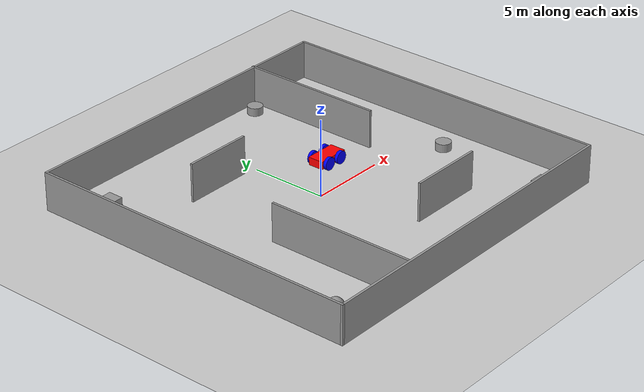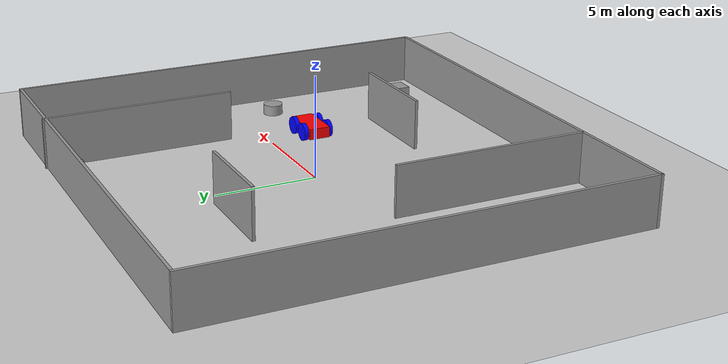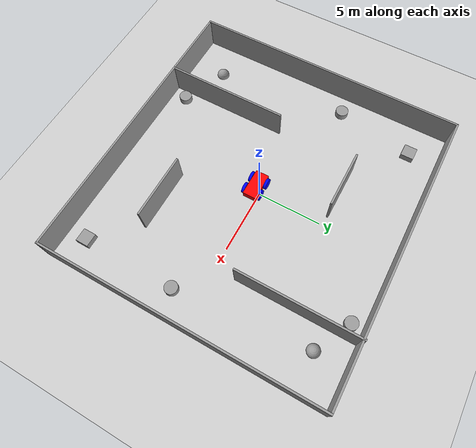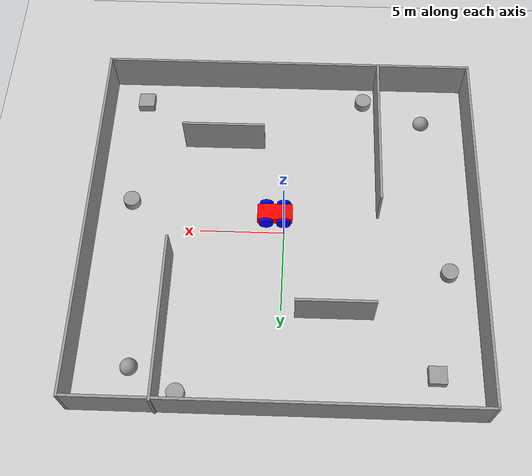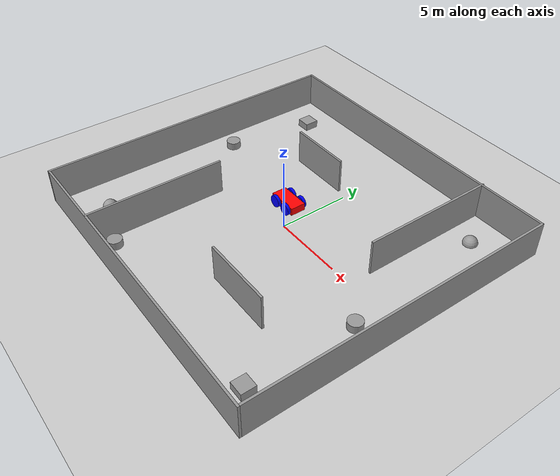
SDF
<sdf version="1.8">
 <world name="sensor_world">
  <physics name="1ms" type="ignored">
   <max_step_size>0.001</max_step_size>
   <real_time_factor>1.0</real_time_factor>
  </physics>
  <plugin filename="ignition-gazebo-physics-system" name="ignition::gazebo::systems::Physics"/>
  <plugin filename="ignition-gazebo-user-commands-system" name="ignition::gazebo::systems::UserCommands"/>
  <plugin filename="ignition-gazebo-scene-broadcaster-system" name="ignition::gazebo::systems::SceneBroadcaster"/>
  <plugin filename="ignition-gazebo-imu-system" name="ignition::gazebo::systems::Imu"/>
  <plugin filename="ignition-gazebo-sensors-system" name="ignition::gazebo::systems::Sensors">
   <render_engine>ogre2</render_engine>
  </plugin>
  <light type="directional" name="sun">
   <pose>0 0 10 0 0 0</pose>
   <diffuse>0.8 0.8 0.8 1</diffuse>
   <specular>0.2 0.2 0.2 1</specular>
   <attenuation>
    <range>1000</range>
    <constant>0.9</constant>
    <linear>0.01</linear>
    <quadratic>0.001</quadratic>
   </attenuation>
   <direction>-0.5 0.1 -0.9</direction>
  </light>
  <model name="ground_plane">
   <static>true</static>
   <link name="link">
    <collision name="collision"><geometry><plane><normal>0 0 1</normal></plane></geometry></collision>
    <visual name="visual">
     <geometry><plane><normal>0 0 1</normal><size>100 100</size></plane></geometry>
     <material>
      <ambient>0.8 0.8 0.8 1</ambient>
      <diffuse>0.8 0.8 0.8 1</diffuse>
      <specular>0.8 0.8 0.8 1</specular>
     </material>
    </visual>
   </link>
  </model>
  <model name="custom_car" canonical_link="chassis">
   <pose relative_to="world">0 0 2 0 0 0</pose>
   <frame name="lidar_frame" attached_to="chassis"><pose>0.8 0 0.5 0 0 0</pose></frame>
   <link name="chassis">
    <pose relative_to="__model__">0.5 0 0.4 0 0 0</pose>
    <inertial>
     <mass>1.14395</mass>
     <inertia>
      <ixx>0.126164</ixx>
      <ixy>0</ixy>
      <ixz>0</ixz>
      <iyy>0.416519</iyy>
      <iyz>0</iyz>
      <izz>0.481014</izz>
     </inertia>
    </inertial>
    <visual name="visual">
     <geometry><box><size>2.0 1.0 0.5</size></box></geometry>
     <material>
      <ambient>1.0 0.0 0.0 1</ambient>
      <diffuse>1.0 0.0 0.0 1</diffuse>
      <specular>1.0 0.0 0.0 1</specular>
     </material>
    </visual>
    <collision name="collision"><geometry><box><size>2.0 1.0 0.5</size></box></geometry></collision>
    <sensor name="imu_sensor" type="imu">
     <always_on>1</always_on>
     <update_rate>1</update_rate>
     <visualize>true</visualize>
     <topic>imu</topic>
    </sensor>
    <sensor name="gpu_lidar" type="gpu_lidar">
     <pose relative_to="lidar_frame">0 0 0 0 0 0</pose>
     <topic>lidar</topic>
     <update_rate>10</update_rate>
     <ray>
      <scan>
       <horizontal>
        <samples>640</samples>
        <resolution>1</resolution>
        <min_angle>-1.396263</min_angle>
        <max_angle>1.396263</max_angle>
       </horizontal>
       <vertical>
        <samples>1</samples>
        <resolution>0.01</resolution>
        <min_angle>0</min_angle>
        <max_angle>0</max_angle>
       </vertical>
      </scan>
      <range><min>0.08</min><max>10.0</max><resolution>0.01</resolution></range>
     </ray>
     <alwaysOn>1</alwaysOn>
     <visualize>true</visualize>
    </sensor>
   </link>
   <link name="left_wheel">
    <pose relative_to="chassis">-0.5 0.6 0 -1.5707 0 0</pose>
    <inertial>
     <mass>2</mass>
     <inertia><ixx>0.145833</ixx><ixy>0</ixy><ixz>0</ixz><iyy>0.145833</iyy><iyz>0</iyz><izz>0.125</izz></inertia>
    </inertial>
    <visual name="visual">
     <geometry><cylinder><radius>0.4</radius><length>0.2</length></cylinder></geometry>
     <material>
      <ambient>0.0 0.0 1.0 1</ambient>
      <diffuse>0.0 0.0 1.0 1</diffuse>
      <specular>0.0 0.0 1.0 1</specular>
     </material>
    </visual>
    <collision name="collision">
     <geometry><cylinder><radius>0.4</radius><length>0.2</length></cylinder></geometry>
    </collision>
   </link>
   <link name="right_wheel">
    <pose relative_to="chassis">-0.5 -0.6 0 -1.5707 0 0</pose>
    <inertial>
     <mass>1</mass>
     <inertia><ixx>0.145833</ixx><ixy>0</ixy><ixz>0</ixz><iyy>0.145833</iyy><iyz>0</iyz><izz>0.125</izz></inertia>
    </inertial>
    <visual name="visual">
     <geometry><cylinder><radius>0.4</radius><length>0.2</length></cylinder></geometry>
     <material>
      <ambient>0.0 0.0 1.0 1</ambient>
      <diffuse>0.0 0.0 1.0 1</diffuse>
      <specular>0.0 0.0 1.0 1</specular>
     </material>
    </visual>
    <collision name="collision">
     <geometry><cylinder><radius>0.4</radius><length>0.2</length></cylinder></geometry>
    </collision>
   </link>
   <link name="back_left_wheel">
    <pose relative_to="chassis">0.5 0.6 0 -1.5707 0 0</pose>
    <inertial>
     <mass>2</mass>
     <inertia><ixx>0.145833</ixx><ixy>0</ixy><ixz>0</ixz><iyy>0.145833</iyy><iyz>0</iyz><izz>0.125</izz></inertia>
    </inertial>
    <visual name="visual">
     <geometry><cylinder><radius>0.4</radius><length>0.2</length></cylinder></geometry>
     <material>
      <ambient>0.0 0.0 1.0 1</ambient>
      <diffuse>0.0 0.0 1.0 1</diffuse>
      <specular>0.0 0.0 1.0 1</specular>
     </material>
    </visual>
    <collision name="collision">
     <geometry><cylinder><radius>0.4</radius><length>0.2</length></cylinder></geometry>
    </collision>
   </link>
   <link name="back_right_wheel">
    <pose relative_to="chassis">0.5 -0.6 0 -1.5707 0 0</pose>
    <inertial>
     <mass>1</mass>
     <inertia><ixx>0.145833</ixx><ixy>0</ixy><ixz>0</ixz><iyy>0.145833</iyy><iyz>0</iyz><izz>0.125</izz></inertia>
    </inertial>
    <visual name="visual">
     <geometry><cylinder><radius>0.4</radius><length>0.2</length></cylinder></geometry>
     <material>
      <ambient>0.0 0.0 1.0 1</ambient>
      <diffuse>0.0 0.0 1.0 1</diffuse>
      <specular>0.0 0.0 1.0 1</specular>
     </material>
    </visual>
    <collision name="collision">
     <geometry><cylinder><radius>0.4</radius><length>0.2</length></cylinder></geometry>
    </collision>
   </link>
   <joint name="left_wheel_joint" type="revolute">
    <pose relative_to="left_wheel"/>
    <parent>chassis</parent>
    <child>left_wheel</child>
    <axis>
     <xyz expressed_in="__model__">0 1 0</xyz>
     <limit><lower>-1.79769e+308</lower><upper>1.79769e+308</upper></limit>
    </axis>
   </joint>
   <joint name="right_wheel_joint" type="revolute">
    <pose relative_to="right_wheel"/>
    <parent>chassis</parent>
    <child>right_wheel</child>
    <axis>
     <xyz expressed_in="__model__">0 1 0</xyz>
     <limit><lower>-1.79769e+308</lower><upper>1.79769e+308</upper></limit>
    </axis>
   </joint>
   <joint name="back_left_wheel_joint" type="revolute">
    <pose relative_to="back_left_wheel"/>
    <parent>chassis</parent>
    <child>back_left_wheel</child>
    <axis>
     <xyz expressed_in="__model__">0 1 0</xyz>
     <limit><lower>-1.79769e+308</lower><upper>1.79769e+308</upper></limit>
    </axis>
   </joint>
   <joint name="back_right_wheel_joint" type="revolute">
    <pose relative_to="back_right_wheel"/>
    <parent>chassis</parent>
    <child>back_right_wheel</child>
    <axis>
     <xyz expressed_in="__model__">0 1 0</xyz>
     <limit><lower>-1.79769e+308</lower><upper>1.79769e+308</upper></limit>
    </axis>
   </joint>
   <plugin filename="ignition-gazebo-diff-drive-system" name="ignition::gazebo::systems::DiffDrive">
    <left_joint>left_wheel_joint</left_joint>
    <right_joint>right_wheel_joint</right_joint>
    <left_joint>back_left_wheel_joint</left_joint>
    <right_joint>back_right_wheel_joint</right_joint>
    <wheel_separation>1.2</wheel_separation>
    <wheel_radius>0.4</wheel_radius>
    <odom_publish_frequency>1</odom_publish_frequency>
    <topic>cmd_vel</topic>
   </plugin>
  </model>
  <model name="custom_world">
   <pose>0.026576 0.072661 0 0 -0 0</pose>
   <link name="Wall_10">
    <collision name="Wall_10_Collision">
     <geometry><box><size>22 0.15 2.5</size></box></geometry>
     <pose>0 0 1.25 0 -0 0</pose>
    </collision>
    <visual name="Wall_10_Visual">
     <pose>0 0 1.25 0 -0 0</pose>
     <geometry><box><size>22 0.15 2.5</size></box></geometry>
     <material>
      <script><uri>file://media/materials/scripts/gazebo.material</uri><name>Gazebo/Grey</name></script>
      <ambient>1 1 1 1</ambient>
     </material>
     <meta><layer>0</layer></meta>
    </visual>
    <pose>11.3 -0.043478 0 0 -0 -1.5708</pose>
   </link>
   <link name="Wall_11">
    <collision name="Wall_11_Collision">
     <geometry><box><size>22.75 0.15 2.5</size></box></geometry>
     <pose>0 0 1.25 0 -0 0</pose>
    </collision>
    <visual name="Wall_11_Visual">
     <pose>0 0 1.25 0 -0 0</pose>
     <geometry><box><size>22.75 0.15 2.5</size></box></geometry>
     <material>
      <script><uri>file://media/materials/scripts/gazebo.material</uri><name>Gazebo/Grey</name></script>
      <ambient>1 1 1 1</ambient>
     </material>
     <meta><layer>0</layer></meta>
    </visual>
    <pose>0 -10.9685 0 0 -0 3.14159</pose>
   </link>
   <link name="Wall_12">
    <collision name="Wall_12_Collision">
     <geometry><box><size>22 0.15 2.5</size></box></geometry>
     <pose>0 0 1.25 0 -0 0</pose>
    </collision>
    <visual name="Wall_12_Visual">
     <pose>0 0 1.25 0 -0 0</pose>
     <geometry><box><size>22 0.15 2.5</size></box></geometry>
     <material>
      <script><uri>file://media/materials/scripts/gazebo.material</uri><name>Gazebo/Grey</name></script>
      <ambient>1 1 1 1</ambient>
     </material>
     <meta><layer>0</layer></meta>
    </visual>
    <pose>-11.3 -0.043478 0 0 -0 1.5708</pose>
   </link>
   <link name="Wall_15">
    <collision name="Wall_15_Collision">
     <geometry><box><size>4.5 0.15 2.5</size></box></geometry>
     <pose>0 0 1.25 0 -0 0</pose>
    </collision>
    <visual name="Wall_15_Visual">
     <pose>0 0 1.25 0 -0 0</pose>
     <geometry><box><size>4.5 0.15 2.5</size></box></geometry>
     <material>
      <script><uri>file://media/materials/scripts/gazebo.material</uri><name>Gazebo/Grey</name></script>
      <ambient>1 1 1 1</ambient>
     </material>
     <meta><layer>0</layer></meta>
    </visual>
    <pose>-3.03804 5.22935 0 0 -0 0</pose>
   </link>
   <link name="Wall_17">
    <collision name="Wall_17_Collision">
     <geometry><box><size>5 0.15 2.5</size></box></geometry>
     <pose>0 0 1.25 0 -0 0</pose>
    </collision>
    <visual name="Wall_17_Visual">
     <pose>0 0 1.25 0 -0 0</pose>
     <geometry><box><size>5 0.15 2.5</size></box></geometry>
     <material>
      <script><uri>file://media/materials/scripts/gazebo.material</uri><name>Gazebo/Grey</name></script>
      <ambient>1 1 1 1</ambient>
     </material>
     <meta><layer>0</layer></meta>
    </visual>
    <pose>3.84022 -6.16196 0 0 -0 3.14159</pose>
   </link>
   <link name="Wall_19">
    <collision name="Wall_19_Collision">
     <geometry><box><size>9.75 0.15 2.5</size></box></geometry>
     <pose>0 0 1.25 0 -0 0</pose>
    </collision>
    <visual name="Wall_19_Visual">
     <pose>0 0 1.25 0 -0 0</pose>
     <geometry><box><size>9.75 0.15 2.5</size></box></geometry>
     <material>
      <script><uri>file://media/materials/scripts/gazebo.material</uri><name>Gazebo/Grey</name></script>
      <ambient>1 1 1 1</ambient>
     </material>
     <meta><layer>0</layer></meta>
    </visual>
    <pose>-5.64783 -6.14457 0 0 -0 1.5708</pose>
   </link>
   <link name="Wall_21">
    <collision name="Wall_21_Collision">
     <geometry><box><size>9.5 0.15 2.5</size></box></geometry>
     <pose>0 0 1.25 0 -0 0</pose>
    </collision>
    <visual name="Wall_21_Visual">
     <pose>0 0 1.25 0 -0 0</pose>
     <geometry><box><size>9.5 0.15 2.5</size></box></geometry>
     <material>
      <script><uri>file://media/materials/scripts/gazebo.material</uri><name>Gazebo/Grey</name></script>
      <ambient>1 1 1 1</ambient>
     </material>
     <meta><layer>0</layer></meta>
    </visual>
    <pose>6.52609 6.29348 0 0 -0 -1.5708</pose>
   </link>
   <link name="Wall_9">
    <collision name="Wall_9_Collision">
     <geometry><box><size>22.75 0.15 2.5</size></box></geometry>
     <pose>0 0 1.25 0 -0 0</pose>
    </collision>
    <visual name="Wall_9_Visual">
     <pose>0 0 1.25 0 -0 0</pose>
     <geometry><box><size>22.75 0.15 2.5</size></box></geometry>
     <material>
      <script><uri>file://media/materials/scripts/gazebo.material</uri><name>Gazebo/Grey</name></script>
      <ambient>1 1 1 1</ambient>
     </material>
     <meta><layer>0</layer></meta>
    </visual>
    <pose>0 10.8815 0 0 -0 0</pose>
   </link>
   <static>1</static>
   <link name="link_1">
    <inertial>
     <mass>1</mass>
     <inertia><ixx>0.1</ixx><ixy>0</ixy><ixz>0</ixz><iyy>0.1</iyy><iyz>0</iyz><izz>0.1</izz></inertia>
    </inertial>
    <pose>-8.57893 -8.26908 0 0 -0 0</pose>
    <visual name="visual">
     <geometry><sphere><radius>0.5</radius></sphere></geometry>
     <material>
      <lighting>1</lighting>
      <script><uri>file://media/materials/scripts/gazebo.material</uri><name>Gazebo/Grey</name></script>
      <shader type="pixel"/>
     </material>
    </visual>
    <collision name="collision">
     <geometry><sphere><radius>0.5</radius></sphere></geometry>
     <surface>
      <friction>
       <ode><mu>1</mu><mu2>1</mu2><fdir1>0 0 0</fdir1><slip1>0</slip1><slip2>0</slip2></ode>
       <torsional>
        <coefficient>1</coefficient>
        <patch_radius>0</patch_radius>
        <surface_radius>0</surface_radius>
        <use_patch_radius>1</use_patch_radius>
        <ode><slip>0</slip></ode>
       </torsional>
      </friction>
      <bounce><restitution_coefficient>0</restitution_coefficient><threshold>1e+06</threshold></bounce>
      <contact>
       <collide_without_contact>0</collide_without_contact>
       <collide_without_contact_bitmask>1</collide_without_contact_bitmask>
       <collide_bitmask>1</collide_bitmask>
       <ode>
        <soft_cfm>0</soft_cfm>
        <soft_erp>0.2</soft_erp>
        <kp>1e+13</kp>
        <kd>1</kd>
        <max_vel>0.01</max_vel>
        <min_depth>0</min_depth>
       </ode>
       <bullet>
        <split_impulse>1</split_impulse>
        <split_impulse_penetration_threshold>-0.01</split_impulse_penetration_threshold>
        <soft_cfm>0</soft_cfm>
        <soft_erp>0.2</soft_erp>
        <kp>1e+13</kp>
        <kd>1</kd>
       </bullet>
      </contact>
     </surface>
    </collision>
   </link>
   <link name="link_2">
    <inertial>
     <mass>1</mass>
     <inertia><ixx>0.1</ixx><ixy>0</ixy><ixz>0</ixz><iyy>0.1</iyy><iyz>0</iyz><izz>0.1</izz></inertia>
    </inertial>
    <pose>8.2456 8.49561 0 0 -0 0</pose>
    <visual name="visual">
     <geometry><sphere><radius>0.5</radius></sphere></geometry>
     <material>
      <lighting>1</lighting>
      <script><uri>file://media/materials/scripts/gazebo.material</uri><name>Gazebo/Grey</name></script>
      <shader type="pixel"/>
     </material>
    </visual>
    <collision name="collision">
     <geometry><sphere><radius>0.5</radius></sphere></geometry>
     <surface>
      <friction>
       <ode><mu>1</mu><mu2>1</mu2><fdir1>0 0 0</fdir1><slip1>0</slip1><slip2>0</slip2></ode>
       <torsional>
        <coefficient>1</coefficient>
        <patch_radius>0</patch_radius>
        <surface_radius>0</surface_radius>
        <use_patch_radius>1</use_patch_radius>
        <ode><slip>0</slip></ode>
       </torsional>
      </friction>
      <bounce><restitution_coefficient>0</restitution_coefficient><threshold>1e+06</threshold></bounce>
      <contact>
       <collide_without_contact>0</collide_without_contact>
       <collide_without_contact_bitmask>1</collide_without_contact_bitmask>
       <collide_bitmask>1</collide_bitmask>
       <ode>
        <soft_cfm>0</soft_cfm>
        <soft_erp>0.2</soft_erp>
        <kp>1e+13</kp>
        <kd>1</kd>
        <max_vel>0.01</max_vel>
        <min_depth>0</min_depth>
       </ode>
       <bullet>
        <split_impulse>1</split_impulse>
        <split_impulse_penetration_threshold>-0.01</split_impulse_penetration_threshold>
        <soft_cfm>0</soft_cfm>
        <soft_erp>0.2</soft_erp>
        <kp>1e+13</kp>
        <kd>1</kd>
       </bullet>
      </contact>
     </surface>
    </collision>
   </link>
   <link name="link_3">
    <inertial>
     <mass>1</mass>
     <inertia><ixx>0.145833</ixx><ixy>0</ixy><ixz>0</ixz><iyy>0.145833</iyy><iyz>0</iyz><izz>0.125</izz></inertia>
    </inertial>
    <pose>-4.85911 -9.70003 0 0 -0 0</pose>
    <visual name="visual">
     <geometry><cylinder><radius>0.5</radius><length>1</length></cylinder></geometry>
     <material>
      <lighting>1</lighting>
      <script><uri>file://media/materials/scripts/gazebo.material</uri><name>Gazebo/Grey</name></script>
      <shader type="pixel"/>
     </material>
    </visual>
    <collision name="collision">
     <geometry><cylinder><radius>0.5</radius><length>1</length></cylinder></geometry>
     <surface>
      <friction>
       <ode><mu>1</mu><mu2>1</mu2><fdir1>0 0 0</fdir1><slip1>0</slip1><slip2>0</slip2></ode>
       <torsional>
        <coefficient>1</coefficient>
        <patch_radius>0</patch_radius>
        <surface_radius>0</surface_radius>
        <use_patch_radius>1</use_patch_radius>
        <ode><slip>0</slip></ode>
       </torsional>
      </friction>
      <bounce><restitution_coefficient>0</restitution_coefficient><threshold>1e+06</threshold></bounce>
      <contact>
       <collide_without_contact>0</collide_without_contact>
       <collide_without_contact_bitmask>1</collide_without_contact_bitmask>
       <collide_bitmask>1</collide_bitmask>
       <ode>
        <soft_cfm>0</soft_cfm>
        <soft_erp>0.2</soft_erp>
        <kp>1e+13</kp>
        <kd>1</kd>
        <max_vel>0.01</max_vel>
        <min_depth>0</min_depth>
       </ode>
       <bullet>
        <split_impulse>1</split_impulse>
        <split_impulse_penetration_threshold>-0.01</split_impulse_penetration_threshold>
        <soft_cfm>0</soft_cfm>
        <soft_erp>0.2</soft_erp>
        <kp>1e+13</kp>
        <kd>1</kd>
       </bullet>
      </contact>
     </surface>
    </collision>
   </link>
   <link name="link_4">
    <inertial>
     <mass>1</mass>
     <inertia><ixx>0.145833</ixx><ixy>0</ixy><ixz>0</ixz><iyy>0.145833</iyy><iyz>0</iyz><izz>0.125</izz></inertia>
    </inertial>
    <pose>5.50998 9.94942 0 0 -0 0</pose>
    <visual name="visual">
     <geometry><cylinder><radius>0.5</radius><length>1</length></cylinder></geometry>
     <material>
      <lighting>1</lighting>
      <script><uri>file://media/materials/scripts/gazebo.material</uri><name>Gazebo/Grey</name></script>
      <shader type="pixel"/>
     </material>
    </visual>
    <collision name="collision">
     <geometry><cylinder><radius>0.5</radius><length>1</length></cylinder></geometry>
     <surface>
      <friction>
       <ode><mu>1</mu><mu2>1</mu2><fdir1>0 0 0</fdir1><slip1>0</slip1><slip2>0</slip2></ode>
       <torsional>
        <coefficient>1</coefficient>
        <patch_radius>0</patch_radius>
        <surface_radius>0</surface_radius>
        <use_patch_radius>1</use_patch_radius>
        <ode><slip>0</slip></ode>
       </torsional>
      </friction>
      <bounce><restitution_coefficient>0</restitution_coefficient><threshold>1e+06</threshold></bounce>
      <contact>
       <collide_without_contact>0</collide_without_contact>
       <collide_without_contact_bitmask>1</collide_without_contact_bitmask>
       <collide_bitmask>1</collide_bitmask>
       <ode>
        <soft_cfm>0</soft_cfm>
        <soft_erp>0.2</soft_erp>
        <kp>1e+13</kp>
        <kd>1</kd>
        <max_vel>0.01</max_vel>
        <min_depth>0</min_depth>
       </ode>
       <bullet>
        <split_impulse>1</split_impulse>
        <split_impulse_penetration_threshold>-0.01</split_impulse_penetration_threshold>
        <soft_cfm>0</soft_cfm>
        <soft_erp>0.2</soft_erp>
        <kp>1e+13</kp>
        <kd>1</kd>
       </bullet>
      </contact>
     </surface>
    </collision>
   </link>
   <link name="link_5">
    <inertial>
     <mass>1</mass>
     <inertia>
      <ixx>0.166667</ixx>
      <ixy>0</ixy>
      <ixz>0</ixz>
      <iyy>0.166667</iyy>
      <iyz>0</iyz>
      <izz>0.166667</izz>
     </inertia>
    </inertial>
    <pose>-8.67242 8.56614 0 0 -0 0</pose>
    <visual name="visual">
     <geometry><box><size>1 1 1</size></box></geometry>
     <material>
      <lighting>1</lighting>
      <script><uri>file://media/materials/scripts/gazebo.material</uri><name>Gazebo/Grey</name></script>
      <shader type="pixel"/>
     </material>
    </visual>
    <collision name="collision">
     <geometry><box><size>1 1 1</size></box></geometry>
     <surface>
      <friction>
       <ode><mu>1</mu><mu2>1</mu2><fdir1>0 0 0</fdir1><slip1>0</slip1><slip2>0</slip2></ode>
       <torsional>
        <coefficient>1</coefficient>
        <patch_radius>0</patch_radius>
        <surface_radius>0</surface_radius>
        <use_patch_radius>1</use_patch_radius>
        <ode><slip>0</slip></ode>
       </torsional>
      </friction>
      <bounce><restitution_coefficient>0</restitution_coefficient><threshold>1e+06</threshold></bounce>
      <contact>
       <collide_without_contact>0</collide_without_contact>
       <collide_without_contact_bitmask>1</collide_without_contact_bitmask>
       <collide_bitmask>1</collide_bitmask>
       <ode>
        <soft_cfm>0</soft_cfm>
        <soft_erp>0.2</soft_erp>
        <kp>1e+13</kp>
        <kd>1</kd>
        <max_vel>0.01</max_vel>
        <min_depth>0</min_depth>
       </ode>
       <bullet>
        <split_impulse>1</split_impulse>
        <split_impulse_penetration_threshold>-0.01</split_impulse_penetration_threshold>
        <soft_cfm>0</soft_cfm>
        <soft_erp>0.2</soft_erp>
        <kp>1e+13</kp>
        <kd>1</kd>
       </bullet>
      </contact>
     </surface>
    </collision>
   </link>
   <link name="link_6">
    <inertial>
     <mass>1</mass>
     <inertia>
      <ixx>0.166667</ixx>
      <ixy>0</ixy>
      <ixz>0</ixz>
      <iyy>0.166667</iyy>
      <iyz>0</iyz>
      <izz>0.166667</izz>
     </inertia>
    </inertial>
    <pose>9.13893 -9.29858 0 0 -0 0</pose>
    <visual name="visual">
     <geometry><box><size>1 1 1</size></box></geometry>
     <material>
      <lighting>1</lighting>
      <script><uri>file://media/materials/scripts/gazebo.material</uri><name>Gazebo/Grey</name></script>
      <shader type="pixel"/>
     </material>
    </visual>
    <collision name="collision">
     <geometry><box><size>1 1 1</size></box></geometry>
     <surface>
      <friction>
       <ode><mu>1</mu><mu2>1</mu2><fdir1>0 0 0</fdir1><slip1>0</slip1><slip2>0</slip2></ode>
       <torsional>
        <coefficient>1</coefficient>
        <patch_radius>0</patch_radius>
        <surface_radius>0</surface_radius>
        <use_patch_radius>1</use_patch_radius>
        <ode><slip>0</slip></ode>
       </torsional>
      </friction>
      <bounce><restitution_coefficient>0</restitution_coefficient><threshold>1e+06</threshold></bounce>
      <contact>
       <collide_without_contact>0</collide_without_contact>
       <collide_without_contact_bitmask>1</collide_without_contact_bitmask>
       <collide_bitmask>1</collide_bitmask>
       <ode>
        <soft_cfm>0</soft_cfm>
        <soft_erp>0.2</soft_erp>
        <kp>1e+13</kp>
        <kd>1</kd>
        <max_vel>0.01</max_vel>
        <min_depth>0</min_depth>
       </ode>
       <bullet>
        <split_impulse>1</split_impulse>
        <split_impulse_penetration_threshold>-0.01</split_impulse_penetration_threshold>
        <soft_cfm>0</soft_cfm>
        <soft_erp>0.2</soft_erp>
        <kp>1e+13</kp>
        <kd>1</kd>
       </bullet>
      </contact>
     </surface>
    </collision>
   </link>
   <link name="link_8">
    <inertial>
     <mass>1</mass>
     <inertia><ixx>0.145833</ixx><ixy>0</ixy><ixz>0</ixz><iyy>0.145833</iyy><iyz>0</iyz><izz>0.125</izz></inertia>
    </inertial>
    <pose>9.25891 -1.92449 0 0 -0 0</pose>
    <visual name="visual">
     <geometry><cylinder><radius>0.5</radius><length>1</length></cylinder></geometry>
     <material>
      <lighting>1</lighting>
      <script><uri>file://media/materials/scripts/gazebo.material</uri><name>Gazebo/Grey</name></script>
      <shader type="pixel"/>
     </material>
    </visual>
    <collision name="collision">
     <geometry><cylinder><radius>0.5</radius><length>1</length></cylinder></geometry>
     <surface>
      <friction>
       <ode><mu>1</mu><mu2>1</mu2><fdir1>0 0 0</fdir1><slip1>0</slip1><slip2>0</slip2></ode>
       <torsional>
        <coefficient>1</coefficient>
        <patch_radius>0</patch_radius>
        <surface_radius>0</surface_radius>
        <use_patch_radius>1</use_patch_radius>
        <ode><slip>0</slip></ode>
       </torsional>
      </friction>
      <bounce><restitution_coefficient>0</restitution_coefficient><threshold>1e+06</threshold></bounce>
      <contact>
       <collide_without_contact>0</collide_without_contact>
       <collide_without_contact_bitmask>1</collide_without_contact_bitmask>
       <collide_bitmask>1</collide_bitmask>
       <ode>
        <soft_cfm>0</soft_cfm>
        <soft_erp>0.2</soft_erp>
        <kp>1e+13</kp>
        <kd>1</kd>
        <max_vel>0.01</max_vel>
        <min_depth>0</min_depth>
       </ode>
       <bullet>
        <split_impulse>1</split_impulse>
        <split_impulse_penetration_threshold>-0.01</split_impulse_penetration_threshold>
        <soft_cfm>0</soft_cfm>
        <soft_erp>0.2</soft_erp>
        <kp>1e+13</kp>
        <kd>1</kd>
       </bullet>
      </contact>
     </surface>
    </collision>
   </link>
   <link name="link_9">
    <inertial>
     <mass>1</mass>
     <inertia><ixx>0.145833</ixx><ixy>0</ixy><ixz>0</ixz><iyy>0.145833</iyy><iyz>0</iyz><izz>0.125</izz></inertia>
    </inertial>
    <pose>-9.72044 2.35665 0 0 -0 0</pose>
    <visual name="visual">
     <geometry><cylinder><radius>0.5</radius><length>1</length></cylinder></geometry>
     <material>
      <lighting>1</lighting>
      <script><uri>file://media/materials/scripts/gazebo.material</uri><name>Gazebo/Grey</name></script>
      <shader type="pixel"/>
     </material>
    </visual>
    <collision name="collision">
     <geometry><cylinder><radius>0.5</radius><length>1</length></cylinder></geometry>
     <surface>
      <friction>
       <ode><mu>1</mu><mu2>1</mu2><fdir1>0 0 0</fdir1><slip1>0</slip1><slip2>0</slip2></ode>
       <torsional>
        <coefficient>1</coefficient>
        <patch_radius>0</patch_radius>
        <surface_radius>0</surface_radius>
        <use_patch_radius>1</use_patch_radius>
        <ode><slip>0</slip></ode>
       </torsional>
      </friction>
      <bounce><restitution_coefficient>0</restitution_coefficient><threshold>1e+06</threshold></bounce>
      <contact>
       <collide_without_contact>0</collide_without_contact>
       <collide_without_contact_bitmask>1</collide_without_contact_bitmask>
       <collide_bitmask>1</collide_bitmask>
       <ode>
        <soft_cfm>0</soft_cfm>
        <soft_erp>0.2</soft_erp>
        <kp>1e+13</kp>
        <kd>1</kd>
        <max_vel>0.01</max_vel>
        <min_depth>0</min_depth>
       </ode>
       <bullet>
        <split_impulse>1</split_impulse>
        <split_impulse_penetration_threshold>-0.01</split_impulse_penetration_threshold>
        <soft_cfm>0</soft_cfm>
        <soft_erp>0.2</soft_erp>
        <kp>1e+13</kp>
        <kd>1</kd>
       </bullet>
      </contact>
     </surface>
    </collision>
   </link>
   <static>0</static>
  </model>
  <plugin filename="ignition-gazebo-triggered-publisher-system" name="ignition::gazebo::systems::TriggeredPublisher">
   <input type="ignition.msgs.Int32" topic="/keyboard/keypress"><match field="data">16777235</match></input>
   <output type="ignition.msgs.Twist" topic="/cmd_vel">linear: {x: 0.5}, angular: {z: 0.0}</output>
  </plugin>
  <plugin filename="ignition-gazebo-triggered-publisher-system" name="ignition::gazebo::systems::TriggeredPublisher">
   <input type="ignition.msgs.Int32" topic="/keyboard/keypress"><match field="data">16777237</match></input>
   <output type="ignition.msgs.Twist" topic="/cmd_vel">linear: {x: -0.5}, angular: {z: 0.0}</output>
  </plugin>
  <plugin filename="ignition-gazebo-triggered-publisher-system" name="ignition::gazebo::systems::TriggeredPublisher">
   <input type="ignition.msgs.Int32" topic="/keyboard/keypress"><match field="data">16777236</match></input>
   <output type="ignition.msgs.Twist" topic="/cmd_vel">linear: {x: 0.0}, angular: {z: -0.5}</output>
  </plugin>
  <plugin filename="ignition-gazebo-triggered-publisher-system" name="ignition::gazebo::systems::TriggeredPublisher">
   <input type="ignition.msgs.Int32" topic="/keyboard/keypress"><match field="data">16777234</match></input>
   <output type="ignition.msgs.Twist" topic="/cmd_vel">linear: {x: 0.0}, angular: {z: 0.5}</output>
  </plugin>
  <plugin filename="ignition-gazebo-triggered-publisher-system" name="ignition::gazebo::systems::TriggeredPublisher">
   <input type="ignition.msgs.Boolean" topic="/wall/touched"><match>data: true</match></input>
   <output type="ignition.msgs.Twist" topic="/cmd_vel">linear: {x: 0.0}, angular: {z: 0.0}</output>
  </plugin>
 </world>
</sdf>
